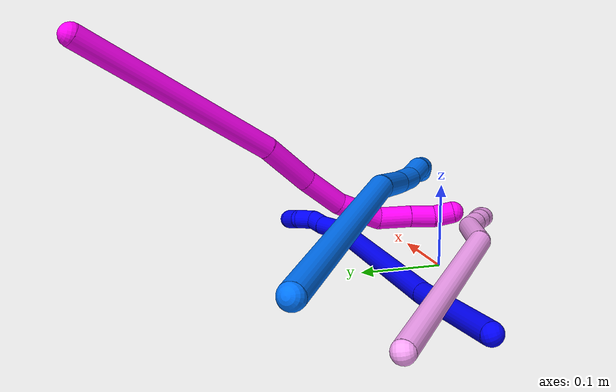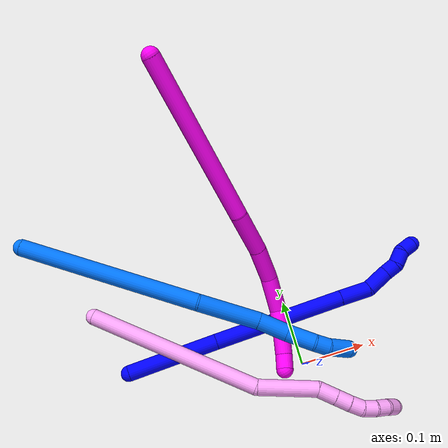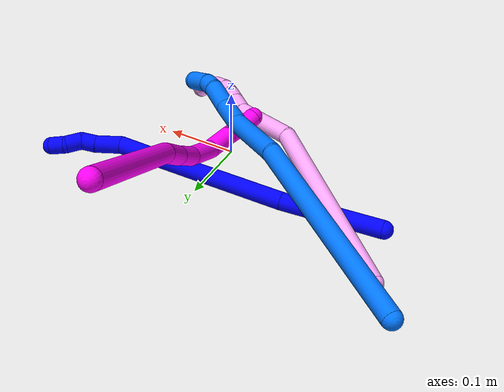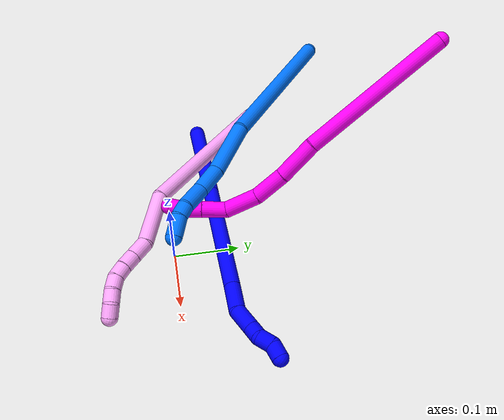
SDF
<sdf version="1.7">
 <world name="default">
  <model name="1">
   <static>0</static>
   <link name="1">
    <collision name="collision-cylinder-e_1_1_4">
     <pose>0.056631 -0.002707 -0.043408 3.07931 0.915872 3.01534</pose>
     <geometry><cylinder><radius>0.0125</radius><length>0.14281</length></cylinder></geometry>
     <surface>
      <friction><ode><mu>1.16</mu><mu2>1.16</mu2><slip1>0</slip1><slip2>0</slip2></ode></friction>
      <contact><ode><kp>1e+06</kp><kd>1</kd><max_vel>0</max_vel><min_depth>0.001</min_depth></ode></contact>
     </surface>
    </collision>
    <visual name="visual-cylinder-e_1_1_4">
     <pose>0.056631 -0.002707 -0.043408 3.07931 0.915872 3.01534</pose>
     <geometry><cylinder><radius>0.0125</radius><length>0.14281</length></cylinder></geometry>
     <material><ambient>0 0 1 1</ambient></material>
    </visual>
    <collision name="collision-cylinder-e_2_4_5">
     <pose>0.198283 -0.003655 -0.145984 -3.11187 0.962616 -3.08469</pose>
     <geometry><cylinder><radius>0.0125</radius><length>0.207195</length></cylinder></geometry>
     <surface>
      <friction><ode><mu>1.16</mu><mu2>1.16</mu2><slip1>0</slip1><slip2>0</slip2></ode></friction>
      <contact><ode><kp>1e+06</kp><kd>1</kd><max_vel>0</max_vel><min_depth>0.001</min_depth></ode></contact>
     </surface>
    </collision>
    <visual name="visual-cylinder-e_2_4_5">
     <pose>0.198283 -0.003655 -0.145984 -3.11187 0.962616 -3.08469</pose>
     <geometry><cylinder><radius>0.0125</radius><length>0.207195</length></cylinder></geometry>
     <material><ambient>0 0 1 1</ambient></material>
    </visual>
    <collision name="collision-cylinder-e_3_5_6">
     <pose>0.302526 -0.001551 -0.218111 -3.11502 0.977375 -3.09162</pose>
     <geometry><cylinder><radius>0.0125</radius><length>0.046372</length></cylinder></geometry>
     <surface>
      <friction><ode><mu>1.16</mu><mu2>1.16</mu2><slip1>0</slip1><slip2>0</slip2></ode></friction>
      <contact><ode><kp>1e+06</kp><kd>1</kd><max_vel>0</max_vel><min_depth>0.001</min_depth></ode></contact>
     </surface>
    </collision>
    <visual name="visual-cylinder-e_3_5_6">
     <pose>0.302526 -0.001551 -0.218111 -3.11502 0.977375 -3.09162</pose>
     <geometry><cylinder><radius>0.0125</radius><length>0.046372</length></cylinder></geometry>
     <material><ambient>0 0 1 1</ambient></material>
    </visual>
    <collision name="collision-cylinder-e_4_6_7">
     <pose>0.331996 0.002225 -0.24635 -2.92061 0.579496 -2.42912</pose>
     <geometry><cylinder><radius>0.0125</radius><length>0.037427</length></cylinder></geometry>
     <surface>
      <friction><ode><mu>1.16</mu><mu2>1.16</mu2><slip1>0</slip1><slip2>0</slip2></ode></friction>
      <contact><ode><kp>1e+06</kp><kd>1</kd><max_vel>0</max_vel><min_depth>0.001</min_depth></ode></contact>
     </surface>
    </collision>
    <visual name="visual-cylinder-e_4_6_7">
     <pose>0.331996 0.002225 -0.24635 -2.92061 0.579496 -2.42912</pose>
     <geometry><cylinder><radius>0.0125</radius><length>0.037427</length></cylinder></geometry>
     <material><ambient>0 0 1 1</ambient></material>
    </visual>
    <collision name="collision-cylinder-e_5_7_8">
     <pose>0.348903 0.008742 -0.268885 -2.73963 0.701337 -2.12523</pose>
     <geometry><cylinder><radius>0.0125</radius><length>0.020644</length></cylinder></geometry>
     <surface>
      <friction><ode><mu>1.16</mu><mu2>1.16</mu2><slip1>0</slip1><slip2>0</slip2></ode></friction>
      <contact><ode><kp>1e+06</kp><kd>1</kd><max_vel>0</max_vel><min_depth>0.001</min_depth></ode></contact>
     </surface>
    </collision>
    <visual name="visual-cylinder-e_5_7_8">
     <pose>0.348903 0.008742 -0.268885 -2.73963 0.701337 -2.12523</pose>
     <geometry><cylinder><radius>0.0125</radius><length>0.020644</length></cylinder></geometry>
     <material><ambient>0 0 1 1</ambient></material>
    </visual>
    <collision name="collision-cylinder-e_6_8_9">
     <pose>0.357838 0.015164 -0.287138 -2.847 0.195387 -1.1675</pose>
     <geometry><cylinder><radius>0.0125</radius><length>0.023428</length></cylinder></geometry>
     <surface>
      <friction><ode><mu>1.16</mu><mu2>1.16</mu2><slip1>0</slip1><slip2>0</slip2></ode></friction>
      <contact><ode><kp>1e+06</kp><kd>1</kd><max_vel>0</max_vel><min_depth>0.001</min_depth></ode></contact>
     </surface>
    </collision>
    <visual name="visual-cylinder-e_6_8_9">
     <pose>0.357838 0.015164 -0.287138 -2.847 0.195387 -1.1675</pose>
     <geometry><cylinder><radius>0.0125</radius><length>0.023428</length></cylinder></geometry>
     <material><ambient>0 0 1 1</ambient></material>
    </visual>
    <collision name="collision-cylinder-e_7_9_2">
     <pose>0.366199 0.017971 -0.307356 3.0842 0.582672 2.95072</pose>
     <geometry><cylinder><radius>0.0125</radius><length>0.022125</length></cylinder></geometry>
     <surface>
      <friction><ode><mu>1.16</mu><mu2>1.16</mu2><slip1>0</slip1><slip2>0</slip2></ode></friction>
      <contact><ode><kp>1e+06</kp><kd>1</kd><max_vel>0</max_vel><min_depth>0.001</min_depth></ode></contact>
     </surface>
    </collision>
    <visual name="visual-cylinder-e_7_9_2">
     <pose>0.366199 0.017971 -0.307356 3.0842 0.582672 2.95072</pose>
     <geometry><cylinder><radius>0.0125</radius><length>0.022125</length></cylinder></geometry>
     <material><ambient>0 0 1 1</ambient></material>
    </visual>
    <collision name="collision-sphere-2">
     <pose>0.372286 0.017441 -0.316578 0 -0 0</pose>
     <geometry><sphere><radius>0.0125</radius></sphere></geometry>
     <surface>
      <friction><ode><mu>1.16</mu><mu2>1.16</mu2><slip1>0</slip1><slip2>0</slip2></ode></friction>
      <contact><ode><kp>1e+06</kp><kd>1</kd><max_vel>0</max_vel><min_depth>0.001</min_depth></ode></contact>
     </surface>
    </collision>
    <visual name="visual-sphere-2">
     <pose>0.372286 0.017441 -0.316578 0 -0 0</pose>
     <geometry><sphere><radius>0.0125</radius></sphere></geometry>
     <material><ambient>0 0 1 1</ambient></material>
    </visual>
    <collision name="collision-sphere-9">
     <pose>0.360112 0.0185 -0.298134 0 -0 0</pose>
     <geometry><sphere><radius>0.0125</radius></sphere></geometry>
     <surface>
      <friction><ode><mu>1.16</mu><mu2>1.16</mu2><slip1>0</slip1><slip2>0</slip2></ode></friction>
      <contact><ode><kp>1e+06</kp><kd>1</kd><max_vel>0</max_vel><min_depth>0.001</min_depth></ode></contact>
     </surface>
    </collision>
    <visual name="visual-sphere-9">
     <pose>0.360112 0.0185 -0.298134 0 -0 0</pose>
     <geometry><sphere><radius>0.0125</radius></sphere></geometry>
     <material><ambient>0 0 1 1</ambient></material>
    </visual>
    <collision name="collision-sphere-4">
     <pose>0.113262 -0.005415 -0.086817 0 -0 0</pose>
     <geometry><sphere><radius>0.0125</radius></sphere></geometry>
     <surface>
      <friction><ode><mu>1.16</mu><mu2>1.16</mu2><slip1>0</slip1><slip2>0</slip2></ode></friction>
      <contact><ode><kp>1e+06</kp><kd>1</kd><max_vel>0</max_vel><min_depth>0.001</min_depth></ode></contact>
     </surface>
    </collision>
    <visual name="visual-sphere-4">
     <pose>0.113262 -0.005415 -0.086817 0 -0 0</pose>
     <geometry><sphere><radius>0.0125</radius></sphere></geometry>
     <material><ambient>0 0 1 1</ambient></material>
    </visual>
    <collision name="collision-sphere-1">
     <geometry><sphere><radius>0.0125</radius></sphere></geometry>
     <surface>
      <friction><ode><mu>1.16</mu><mu2>1.16</mu2><slip1>0</slip1><slip2>0</slip2></ode></friction>
      <contact><ode><kp>1e+06</kp><kd>1</kd><max_vel>0</max_vel><min_depth>0.001</min_depth></ode></contact>
     </surface>
    </collision>
    <visual name="visual-sphere-1">
     <geometry><sphere><radius>0.0125</radius></sphere></geometry>
     <material><ambient>0 0 1 1</ambient></material>
    </visual>
    <collision name="collision-sphere-8">
     <pose>0.355563 0.011828 -0.276142 0 -0 0</pose>
     <geometry><sphere><radius>0.0125</radius></sphere></geometry>
     <surface>
      <friction><ode><mu>1.16</mu><mu2>1.16</mu2><slip1>0</slip1><slip2>0</slip2></ode></friction>
      <contact><ode><kp>1e+06</kp><kd>1</kd><max_vel>0</max_vel><min_depth>0.001</min_depth></ode></contact>
     </surface>
    </collision>
    <visual name="visual-sphere-8">
     <pose>0.355563 0.011828 -0.276142 0 -0 0</pose>
     <geometry><sphere><radius>0.0125</radius></sphere></geometry>
     <material><ambient>0 0 1 1</ambient></material>
    </visual>
    <collision name="collision-sphere-5">
     <pose>0.283304 -0.001896 -0.20515 0 -0 0</pose>
     <geometry><sphere><radius>0.0125</radius></sphere></geometry>
     <surface>
      <friction><ode><mu>1.16</mu><mu2>1.16</mu2><slip1>0</slip1><slip2>0</slip2></ode></friction>
      <contact><ode><kp>1e+06</kp><kd>1</kd><max_vel>0</max_vel><min_depth>0.001</min_depth></ode></contact>
     </surface>
    </collision>
    <visual name="visual-sphere-5">
     <pose>0.283304 -0.001896 -0.20515 0 -0 0</pose>
     <geometry><sphere><radius>0.0125</radius></sphere></geometry>
     <material><ambient>0 0 1 1</ambient></material>
    </visual>
    <collision name="collision-sphere-6">
     <pose>0.321748 -0.001207 -0.231072 0 -0 0</pose>
     <geometry><sphere><radius>0.0125</radius></sphere></geometry>
     <surface>
      <friction><ode><mu>1.16</mu><mu2>1.16</mu2><slip1>0</slip1><slip2>0</slip2></ode></friction>
      <contact><ode><kp>1e+06</kp><kd>1</kd><max_vel>0</max_vel><min_depth>0.001</min_depth></ode></contact>
     </surface>
    </collision>
    <visual name="visual-sphere-6">
     <pose>0.321748 -0.001207 -0.231072 0 -0 0</pose>
     <geometry><sphere><radius>0.0125</radius></sphere></geometry>
     <material><ambient>0 0 1 1</ambient></material>
    </visual>
    <collision name="collision-sphere-7">
     <pose>0.342243 0.005657 -0.261628 0 -0 0</pose>
     <geometry><sphere><radius>0.0125</radius></sphere></geometry>
     <surface>
      <friction><ode><mu>1.16</mu><mu2>1.16</mu2><slip1>0</slip1><slip2>0</slip2></ode></friction>
      <contact><ode><kp>1e+06</kp><kd>1</kd><max_vel>0</max_vel><min_depth>0.001</min_depth></ode></contact>
     </surface>
    </collision>
    <visual name="visual-sphere-7">
     <pose>0.342243 0.005657 -0.261628 0 -0 0</pose>
     <geometry><sphere><radius>0.0125</radius></sphere></geometry>
     <material><ambient>0 0 1 1</ambient></material>
    </visual>
    <inertial>
     <pose>0.198626 -0.000399 -0.149717 0 -0 0</pose>
     <mass>0.5</mass>
     <inertia>
      <ixx>-0.00057</ixx>
      <ixy>0</ixy>
      <ixz>0</ixz>
      <iyy>0.001003</iyy>
      <iyz>0</iyz>
      <izz>-0.000856</izz>
     </inertia>
    </inertial>
   </link>
   <pose>-0.261602 0.064485 0.01968 1.15064 -0.274171 -0.519933</pose>
  </model>
  <model name="4">
   <static>0</static>
   <link name="4">
    <collision name="collision-cylinder-e_1_1_4">
     <pose>0.133847 -0.012644 -0.023597 2.64968 1.37339 2.54728</pose>
     <geometry><cylinder><radius>0.0125</radius><length>0.272997</length></cylinder></geometry>
     <surface>
      <friction><ode><mu>1.16</mu><mu2>1.16</mu2><slip1>0</slip1><slip2>0</slip2></ode></friction>
      <contact><ode><kp>1e+06</kp><kd>1</kd><max_vel>0</max_vel><min_depth>0.001</min_depth></ode></contact>
     </surface>
    </collision>
    <visual name="visual-cylinder-e_1_1_4">
     <pose>0.133847 -0.012644 -0.023597 2.64968 1.37339 2.54728</pose>
     <geometry><cylinder><radius>0.0125</radius><length>0.272997</length></cylinder></geometry>
     <material><ambient>1 0.65098 0.996078 1</ambient></material>
    </visual>
    <collision name="collision-cylinder-e_2_4_5">
     <pose>0.312839 -0.024359 -0.036661 -0.088067 1.34073 -0.069841</pose>
     <geometry><cylinder><radius>0.0125</radius><length>0.092731</length></cylinder></geometry>
     <surface>
      <friction><ode><mu>1.16</mu><mu2>1.16</mu2><slip1>0</slip1><slip2>0</slip2></ode></friction>
      <contact><ode><kp>1e+06</kp><kd>1</kd><max_vel>0</max_vel><min_depth>0.001</min_depth></ode></contact>
     </surface>
    </collision>
    <visual name="visual-cylinder-e_2_4_5">
     <pose>0.312839 -0.024359 -0.036661 -0.088067 1.34073 -0.069841</pose>
     <geometry><cylinder><radius>0.0125</radius><length>0.092731</length></cylinder></geometry>
     <material><ambient>1 0.65098 0.996078 1</ambient></material>
    </visual>
    <collision name="collision-cylinder-e_3_5_6">
     <pose>0.372435 -0.022634 -0.02848 -2.81555 1.40073 -2.75617</pose>
     <geometry><cylinder><radius>0.0125</radius><length>0.029327</length></cylinder></geometry>
     <surface>
      <friction><ode><mu>1.16</mu><mu2>1.16</mu2><slip1>0</slip1><slip2>0</slip2></ode></friction>
      <contact><ode><kp>1e+06</kp><kd>1</kd><max_vel>0</max_vel><min_depth>0.001</min_depth></ode></contact>
     </surface>
    </collision>
    <visual name="visual-cylinder-e_3_5_6">
     <pose>0.372435 -0.022634 -0.02848 -2.81555 1.40073 -2.75617</pose>
     <geometry><cylinder><radius>0.0125</radius><length>0.029327</length></cylinder></geometry>
     <material><ambient>1 0.65098 0.996078 1</ambient></material>
    </visual>
    <collision name="collision-cylinder-e_4_6_7">
     <pose>0.398092 -0.021125 -0.032637 -2.76519 1.39917 -2.69648</pose>
     <geometry><cylinder><radius>0.0125</radius><length>0.022744</length></cylinder></geometry>
     <surface>
      <friction><ode><mu>1.16</mu><mu2>1.16</mu2><slip1>0</slip1><slip2>0</slip2></ode></friction>
      <contact><ode><kp>1e+06</kp><kd>1</kd><max_vel>0</max_vel><min_depth>0.001</min_depth></ode></contact>
     </surface>
    </collision>
    <visual name="visual-cylinder-e_4_6_7">
     <pose>0.398092 -0.021125 -0.032637 -2.76519 1.39917 -2.69648</pose>
     <geometry><cylinder><radius>0.0125</radius><length>0.022744</length></cylinder></geometry>
     <material><ambient>1 0.65098 0.996078 1</ambient></material>
    </visual>
    <collision name="collision-cylinder-e_5_7_8">
     <pose>0.4196 -0.01917 -0.035333 -2.19232 1.42368 -2.06729</pose>
     <geometry><cylinder><radius>0.0125</radius><length>0.020831</length></cylinder></geometry>
     <surface>
      <friction><ode><mu>1.16</mu><mu2>1.16</mu2><slip1>0</slip1><slip2>0</slip2></ode></friction>
      <contact><ode><kp>1e+06</kp><kd>1</kd><max_vel>0</max_vel><min_depth>0.001</min_depth></ode></contact>
     </surface>
    </collision>
    <visual name="visual-cylinder-e_5_7_8">
     <pose>0.4196 -0.01917 -0.035333 -2.19232 1.42368 -2.06729</pose>
     <geometry><cylinder><radius>0.0125</radius><length>0.020831</length></cylinder></geometry>
     <material><ambient>1 0.65098 0.996078 1</ambient></material>
    </visual>
    <collision name="collision-cylinder-e_6_8_9">
     <pose>0.43975 -0.016395 -0.033561 -0.523027 1.26851 -0.388812</pose>
     <geometry><cylinder><radius>0.0125</radius><length>0.02063</length></cylinder></geometry>
     <surface>
      <friction><ode><mu>1.16</mu><mu2>1.16</mu2><slip1>0</slip1><slip2>0</slip2></ode></friction>
      <contact><ode><kp>1e+06</kp><kd>1</kd><max_vel>0</max_vel><min_depth>0.001</min_depth></ode></contact>
     </surface>
    </collision>
    <visual name="visual-cylinder-e_6_8_9">
     <pose>0.43975 -0.016395 -0.033561 -0.523027 1.26851 -0.388812</pose>
     <geometry><cylinder><radius>0.0125</radius><length>0.02063</length></cylinder></geometry>
     <material><ambient>1 0.65098 0.996078 1</ambient></material>
    </visual>
    <collision name="collision-cylinder-e_7_9_10">
     <pose>0.458309 -0.011596 -0.027137 -0.714632 1.05121 -0.426512</pose>
     <geometry><cylinder><radius>0.0125</radius><length>0.020071</length></cylinder></geometry>
     <surface>
      <friction><ode><mu>1.16</mu><mu2>1.16</mu2><slip1>0</slip1><slip2>0</slip2></ode></friction>
      <contact><ode><kp>1e+06</kp><kd>1</kd><max_vel>0</max_vel><min_depth>0.001</min_depth></ode></contact>
     </surface>
    </collision>
    <visual name="visual-cylinder-e_7_9_10">
     <pose>0.458309 -0.011596 -0.027137 -0.714632 1.05121 -0.426512</pose>
     <geometry><cylinder><radius>0.0125</radius><length>0.020071</length></cylinder></geometry>
     <material><ambient>1 0.65098 0.996078 1</ambient></material>
    </visual>
    <collision name="collision-cylinder-e_8_10_2">
     <pose>0.474439 -0.001859 -0.020233 -1.1189 0.800903 -0.518238</pose>
     <geometry><cylinder><radius>0.0125</radius><length>0.020669</length></cylinder></geometry>
     <surface>
      <friction><ode><mu>1.16</mu><mu2>1.16</mu2><slip1>0</slip1><slip2>0</slip2></ode></friction>
      <contact><ode><kp>1e+06</kp><kd>1</kd><max_vel>0</max_vel><min_depth>0.001</min_depth></ode></contact>
     </surface>
    </collision>
    <visual name="visual-cylinder-e_8_10_2">
     <pose>0.474439 -0.001859 -0.020233 -1.1189 0.800903 -0.518238</pose>
     <geometry><cylinder><radius>0.0125</radius><length>0.020669</length></cylinder></geometry>
     <material><ambient>1 0.65098 0.996078 1</ambient></material>
    </visual>
    <collision name="collision-sphere-2">
     <pose>0.481859 0.004612 -0.017091 0 -0 0</pose>
     <geometry><sphere><radius>0.0125</radius></sphere></geometry>
     <surface>
      <friction><ode><mu>1.16</mu><mu2>1.16</mu2><slip1>0</slip1><slip2>0</slip2></ode></friction>
      <contact><ode><kp>1e+06</kp><kd>1</kd><max_vel>0</max_vel><min_depth>0.001</min_depth></ode></contact>
     </surface>
    </collision>
    <visual name="visual-sphere-2">
     <pose>0.481859 0.004612 -0.017091 0 -0 0</pose>
     <geometry><sphere><radius>0.0125</radius></sphere></geometry>
     <material><ambient>1 0.65098 0.996078 1</ambient></material>
    </visual>
    <collision name="collision-sphere-10">
     <pose>0.467019 -0.00833 -0.023374 0 -0 0</pose>
     <geometry><sphere><radius>0.0125</radius></sphere></geometry>
     <surface>
      <friction><ode><mu>1.16</mu><mu2>1.16</mu2><slip1>0</slip1><slip2>0</slip2></ode></friction>
      <contact><ode><kp>1e+06</kp><kd>1</kd><max_vel>0</max_vel><min_depth>0.001</min_depth></ode></contact>
     </surface>
    </collision>
    <visual name="visual-sphere-10">
     <pose>0.467019 -0.00833 -0.023374 0 -0 0</pose>
     <geometry><sphere><radius>0.0125</radius></sphere></geometry>
     <material><ambient>1 0.65098 0.996078 1</ambient></material>
    </visual>
    <collision name="collision-sphere-9">
     <pose>0.449598 -0.014861 -0.030901 0 -0 0</pose>
     <geometry><sphere><radius>0.0125</radius></sphere></geometry>
     <surface>
      <friction><ode><mu>1.16</mu><mu2>1.16</mu2><slip1>0</slip1><slip2>0</slip2></ode></friction>
      <contact><ode><kp>1e+06</kp><kd>1</kd><max_vel>0</max_vel><min_depth>0.001</min_depth></ode></contact>
     </surface>
    </collision>
    <visual name="visual-sphere-9">
     <pose>0.449598 -0.014861 -0.030901 0 -0 0</pose>
     <geometry><sphere><radius>0.0125</radius></sphere></geometry>
     <material><ambient>1 0.65098 0.996078 1</ambient></material>
    </visual>
    <collision name="collision-sphere-4">
     <pose>0.267694 -0.025289 -0.047194 0 -0 0</pose>
     <geometry><sphere><radius>0.0125</radius></sphere></geometry>
     <surface>
      <friction><ode><mu>1.16</mu><mu2>1.16</mu2><slip1>0</slip1><slip2>0</slip2></ode></friction>
      <contact><ode><kp>1e+06</kp><kd>1</kd><max_vel>0</max_vel><min_depth>0.001</min_depth></ode></contact>
     </surface>
    </collision>
    <visual name="visual-sphere-4">
     <pose>0.267694 -0.025289 -0.047194 0 -0 0</pose>
     <geometry><sphere><radius>0.0125</radius></sphere></geometry>
     <material><ambient>1 0.65098 0.996078 1</ambient></material>
    </visual>
    <collision name="collision-sphere-1">
     <geometry><sphere><radius>0.0125</radius></sphere></geometry>
     <surface>
      <friction><ode><mu>1.16</mu><mu2>1.16</mu2><slip1>0</slip1><slip2>0</slip2></ode></friction>
      <contact><ode><kp>1e+06</kp><kd>1</kd><max_vel>0</max_vel><min_depth>0.001</min_depth></ode></contact>
     </surface>
    </collision>
    <visual name="visual-sphere-1">
     <geometry><sphere><radius>0.0125</radius></sphere></geometry>
     <material><ambient>1 0.65098 0.996078 1</ambient></material>
    </visual>
    <collision name="collision-sphere-8">
     <pose>0.429903 -0.017929 -0.036222 0 -0 0</pose>
     <geometry><sphere><radius>0.0125</radius></sphere></geometry>
     <surface>
      <friction><ode><mu>1.16</mu><mu2>1.16</mu2><slip1>0</slip1><slip2>0</slip2></ode></friction>
      <contact><ode><kp>1e+06</kp><kd>1</kd><max_vel>0</max_vel><min_depth>0.001</min_depth></ode></contact>
     </surface>
    </collision>
    <visual name="visual-sphere-8">
     <pose>0.429903 -0.017929 -0.036222 0 -0 0</pose>
     <geometry><sphere><radius>0.0125</radius></sphere></geometry>
     <material><ambient>1 0.65098 0.996078 1</ambient></material>
    </visual>
    <collision name="collision-sphere-5">
     <pose>0.357983 -0.023429 -0.026129 0 -0 0</pose>
     <geometry><sphere><radius>0.0125</radius></sphere></geometry>
     <surface>
      <friction><ode><mu>1.16</mu><mu2>1.16</mu2><slip1>0</slip1><slip2>0</slip2></ode></friction>
      <contact><ode><kp>1e+06</kp><kd>1</kd><max_vel>0</max_vel><min_depth>0.001</min_depth></ode></contact>
     </surface>
    </collision>
    <visual name="visual-sphere-5">
     <pose>0.357983 -0.023429 -0.026129 0 -0 0</pose>
     <geometry><sphere><radius>0.0125</radius></sphere></geometry>
     <material><ambient>1 0.65098 0.996078 1</ambient></material>
    </visual>
    <collision name="collision-sphere-6">
     <pose>0.386887 -0.021839 -0.030831 0 -0 0</pose>
     <geometry><sphere><radius>0.0125</radius></sphere></geometry>
     <surface>
      <friction><ode><mu>1.16</mu><mu2>1.16</mu2><slip1>0</slip1><slip2>0</slip2></ode></friction>
      <contact><ode><kp>1e+06</kp><kd>1</kd><max_vel>0</max_vel><min_depth>0.001</min_depth></ode></contact>
     </surface>
    </collision>
    <visual name="visual-sphere-6">
     <pose>0.386887 -0.021839 -0.030831 0 -0 0</pose>
     <geometry><sphere><radius>0.0125</radius></sphere></geometry>
     <material><ambient>1 0.65098 0.996078 1</ambient></material>
    </visual>
    <collision name="collision-sphere-7">
     <pose>0.409297 -0.020411 -0.034443 0 -0 0</pose>
     <geometry><sphere><radius>0.0125</radius></sphere></geometry>
     <surface>
      <friction><ode><mu>1.16</mu><mu2>1.16</mu2><slip1>0</slip1><slip2>0</slip2></ode></friction>
      <contact><ode><kp>1e+06</kp><kd>1</kd><max_vel>0</max_vel><min_depth>0.001</min_depth></ode></contact>
     </surface>
    </collision>
    <visual name="visual-sphere-7">
     <pose>0.409297 -0.020411 -0.034443 0 -0 0</pose>
     <geometry><sphere><radius>0.0125</radius></sphere></geometry>
     <material><ambient>1 0.65098 0.996078 1</ambient></material>
    </visual>
    <inertial>
     <pose>0.244688 -0.015727 -0.027621 0 -0 0</pose>
     <mass>0.5</mass>
     <inertia>
      <ixx>-3.8e-05</ixx>
      <ixy>0</ixy>
      <ixz>0</ixz>
      <iyy>0.001954</iyy>
      <iyz>0</iyz>
      <izz>-0.001599</izz>
     </inertia>
    </inertial>
   </link>
   <pose>-0.289214 0.163497 0.025382 -1.77547 0.026495 -0.550267</pose>
  </model>
  <model name="10">
   <static>0</static>
   <link name="10">
    <collision name="collision-cylinder-e_1_1_4">
     <pose>-0.021285 -0.021105 -0.117762 2.96426 -0.176065 -1.56357</pose>
     <geometry><cylinder><radius>0.0125</radius><length>0.243033</length></cylinder></geometry>
     <surface>
      <friction><ode><mu>1.16</mu><mu2>1.16</mu2><slip1>0</slip1><slip2>0</slip2></ode></friction>
      <contact><ode><kp>1e+06</kp><kd>1</kd><max_vel>0</max_vel><min_depth>0.001</min_depth></ode></contact>
     </surface>
    </collision>
    <visual name="visual-cylinder-e_1_1_4">
     <pose>-0.021285 -0.021105 -0.117762 2.96426 -0.176065 -1.56357</pose>
     <geometry><cylinder><radius>0.0125</radius><length>0.243033</length></cylinder></geometry>
     <material><ambient>1 0 0.964706 1</ambient></material>
    </visual>
    <collision name="collision-cylinder-e_2_4_5">
     <pose>-0.052128 -0.050092 -0.265314 2.88294 -0.300773 -1.72305</pose>
     <geometry><cylinder><radius>0.0125</radius><length>0.064528</length></cylinder></geometry>
     <surface>
      <friction><ode><mu>1.16</mu><mu2>1.16</mu2><slip1>0</slip1><slip2>0</slip2></ode></friction>
      <contact><ode><kp>1e+06</kp><kd>1</kd><max_vel>0</max_vel><min_depth>0.001</min_depth></ode></contact>
     </surface>
    </collision>
    <visual name="visual-cylinder-e_2_4_5">
     <pose>-0.052128 -0.050092 -0.265314 2.88294 -0.300773 -1.72305</pose>
     <geometry><cylinder><radius>0.0125</radius><length>0.064528</length></cylinder></geometry>
     <material><ambient>1 0 0.964706 1</ambient></material>
    </visual>
    <collision name="collision-cylinder-e_3_5_6">
     <pose>-0.066614 -0.06581 -0.318907 2.82355 -0.194168 -1.09147</pose>
     <geometry><cylinder><radius>0.0125</radius><length>0.051077</length></cylinder></geometry>
     <surface>
      <friction><ode><mu>1.16</mu><mu2>1.16</mu2><slip1>0</slip1><slip2>0</slip2></ode></friction>
      <contact><ode><kp>1e+06</kp><kd>1</kd><max_vel>0</max_vel><min_depth>0.001</min_depth></ode></contact>
     </surface>
    </collision>
    <visual name="visual-cylinder-e_3_5_6">
     <pose>-0.066614 -0.06581 -0.318907 2.82355 -0.194168 -1.09147</pose>
     <geometry><cylinder><radius>0.0125</radius><length>0.051077</length></cylinder></geometry>
     <material><ambient>1 0 0.964706 1</ambient></material>
    </visual>
    <collision name="collision-cylinder-e_4_6_7">
     <pose>-0.069571 -0.080979 -0.368094 2.8604 0.074428 0.514474</pose>
     <geometry><cylinder><radius>0.0125</radius><length>0.052992</length></cylinder></geometry>
     <surface>
      <friction><ode><mu>1.16</mu><mu2>1.16</mu2><slip1>0</slip1><slip2>0</slip2></ode></friction>
      <contact><ode><kp>1e+06</kp><kd>1</kd><max_vel>0</max_vel><min_depth>0.001</min_depth></ode></contact>
     </surface>
    </collision>
    <visual name="visual-cylinder-e_4_6_7">
     <pose>-0.069571 -0.080979 -0.368094 2.8604 0.074428 0.514474</pose>
     <geometry><cylinder><radius>0.0125</radius><length>0.052992</length></cylinder></geometry>
     <material><ambient>1 0 0.964706 1</ambient></material>
    </visual>
    <collision name="collision-cylinder-e_5_7_8">
     <pose>-0.057989 -0.091214 -0.409238 2.95938 0.540302 2.50427</pose>
     <geometry><cylinder><radius>0.0125</radius><length>0.037372</length></cylinder></geometry>
     <surface>
      <friction><ode><mu>1.16</mu><mu2>1.16</mu2><slip1>0</slip1><slip2>0</slip2></ode></friction>
      <contact><ode><kp>1e+06</kp><kd>1</kd><max_vel>0</max_vel><min_depth>0.001</min_depth></ode></contact>
     </surface>
    </collision>
    <visual name="visual-cylinder-e_5_7_8">
     <pose>-0.057989 -0.091214 -0.409238 2.95938 0.540302 2.50427</pose>
     <geometry><cylinder><radius>0.0125</radius><length>0.037372</length></cylinder></geometry>
     <material><ambient>1 0 0.964706 1</ambient></material>
    </visual>
    <collision name="collision-cylinder-e_6_8_9">
     <pose>-0.041561 -0.097075 -0.437066 2.90135 0.501708 2.26118</pose>
     <geometry><cylinder><radius>0.0125</radius><length>0.028346</length></cylinder></geometry>
     <surface>
      <friction><ode><mu>1.16</mu><mu2>1.16</mu2><slip1>0</slip1><slip2>0</slip2></ode></friction>
      <contact><ode><kp>1e+06</kp><kd>1</kd><max_vel>0</max_vel><min_depth>0.001</min_depth></ode></contact>
     </surface>
    </collision>
    <visual name="visual-cylinder-e_6_8_9">
     <pose>-0.041561 -0.097075 -0.437066 2.90135 0.501708 2.26118</pose>
     <geometry><cylinder><radius>0.0125</radius><length>0.028346</length></cylinder></geometry>
     <material><ambient>1 0 0.964706 1</ambient></material>
    </visual>
    <collision name="collision-cylinder-e_7_9_2">
     <pose>-0.027034 -0.101217 -0.457346 2.99816 0.748835 2.77994</pose>
     <geometry><cylinder><radius>0.0125</radius><length>0.022652</length></cylinder></geometry>
     <surface>
      <friction><ode><mu>1.16</mu><mu2>1.16</mu2><slip1>0</slip1><slip2>0</slip2></ode></friction>
      <contact><ode><kp>1e+06</kp><kd>1</kd><max_vel>0</max_vel><min_depth>0.001</min_depth></ode></contact>
     </surface>
    </collision>
    <visual name="visual-cylinder-e_7_9_2">
     <pose>-0.027034 -0.101217 -0.457346 2.99816 0.748835 2.77994</pose>
     <geometry><cylinder><radius>0.0125</radius><length>0.022652</length></cylinder></geometry>
     <material><ambient>1 0 0.964706 1</ambient></material>
    </visual>
    <collision name="collision-sphere-2">
     <pose>-0.019324 -0.102403 -0.465557 0 -0 0</pose>
     <geometry><sphere><radius>0.0125</radius></sphere></geometry>
     <surface>
      <friction><ode><mu>1.16</mu><mu2>1.16</mu2><slip1>0</slip1><slip2>0</slip2></ode></friction>
      <contact><ode><kp>1e+06</kp><kd>1</kd><max_vel>0</max_vel><min_depth>0.001</min_depth></ode></contact>
     </surface>
    </collision>
    <visual name="visual-sphere-2">
     <pose>-0.019324 -0.102403 -0.465557 0 -0 0</pose>
     <geometry><sphere><radius>0.0125</radius></sphere></geometry>
     <material><ambient>1 0 0.964706 1</ambient></material>
    </visual>
    <collision name="collision-sphere-9">
     <pose>-0.034745 -0.100031 -0.449135 0 -0 0</pose>
     <geometry><sphere><radius>0.0125</radius></sphere></geometry>
     <surface>
      <friction><ode><mu>1.16</mu><mu2>1.16</mu2><slip1>0</slip1><slip2>0</slip2></ode></friction>
      <contact><ode><kp>1e+06</kp><kd>1</kd><max_vel>0</max_vel><min_depth>0.001</min_depth></ode></contact>
     </surface>
    </collision>
    <visual name="visual-sphere-9">
     <pose>-0.034745 -0.100031 -0.449135 0 -0 0</pose>
     <geometry><sphere><radius>0.0125</radius></sphere></geometry>
     <material><ambient>1 0 0.964706 1</ambient></material>
    </visual>
    <collision name="collision-sphere-4">
     <pose>-0.042569 -0.04221 -0.235524 0 -0 0</pose>
     <geometry><sphere><radius>0.0125</radius></sphere></geometry>
     <surface>
      <friction><ode><mu>1.16</mu><mu2>1.16</mu2><slip1>0</slip1><slip2>0</slip2></ode></friction>
      <contact><ode><kp>1e+06</kp><kd>1</kd><max_vel>0</max_vel><min_depth>0.001</min_depth></ode></contact>
     </surface>
    </collision>
    <visual name="visual-sphere-4">
     <pose>-0.042569 -0.04221 -0.235524 0 -0 0</pose>
     <geometry><sphere><radius>0.0125</radius></sphere></geometry>
     <material><ambient>1 0 0.964706 1</ambient></material>
    </visual>
    <collision name="collision-sphere-1">
     <geometry><sphere><radius>0.0125</radius></sphere></geometry>
     <surface>
      <friction><ode><mu>1.16</mu><mu2>1.16</mu2><slip1>0</slip1><slip2>0</slip2></ode></friction>
      <contact><ode><kp>1e+06</kp><kd>1</kd><max_vel>0</max_vel><min_depth>0.001</min_depth></ode></contact>
     </surface>
    </collision>
    <visual name="visual-sphere-1">
     <geometry><sphere><radius>0.0125</radius></sphere></geometry>
     <material><ambient>1 0 0.964706 1</ambient></material>
    </visual>
    <collision name="collision-sphere-8">
     <pose>-0.048377 -0.094118 -0.424997 0 -0 0</pose>
     <geometry><sphere><radius>0.0125</radius></sphere></geometry>
     <surface>
      <friction><ode><mu>1.16</mu><mu2>1.16</mu2><slip1>0</slip1><slip2>0</slip2></ode></friction>
      <contact><ode><kp>1e+06</kp><kd>1</kd><max_vel>0</max_vel><min_depth>0.001</min_depth></ode></contact>
     </surface>
    </collision>
    <visual name="visual-sphere-8">
     <pose>-0.048377 -0.094118 -0.424997 0 -0 0</pose>
     <geometry><sphere><radius>0.0125</radius></sphere></geometry>
     <material><ambient>1 0 0.964706 1</ambient></material>
    </visual>
    <collision name="collision-sphere-5">
     <pose>-0.061686 -0.057974 -0.295105 0 -0 0</pose>
     <geometry><sphere><radius>0.0125</radius></sphere></geometry>
     <surface>
      <friction><ode><mu>1.16</mu><mu2>1.16</mu2><slip1>0</slip1><slip2>0</slip2></ode></friction>
      <contact><ode><kp>1e+06</kp><kd>1</kd><max_vel>0</max_vel><min_depth>0.001</min_depth></ode></contact>
     </surface>
    </collision>
    <visual name="visual-sphere-5">
     <pose>-0.061686 -0.057974 -0.295105 0 -0 0</pose>
     <geometry><sphere><radius>0.0125</radius></sphere></geometry>
     <material><ambient>1 0 0.964706 1</ambient></material>
    </visual>
    <collision name="collision-sphere-6">
     <pose>-0.071541 -0.073646 -0.342709 0 -0 0</pose>
     <geometry><sphere><radius>0.0125</radius></sphere></geometry>
     <surface>
      <friction><ode><mu>1.16</mu><mu2>1.16</mu2><slip1>0</slip1><slip2>0</slip2></ode></friction>
      <contact><ode><kp>1e+06</kp><kd>1</kd><max_vel>0</max_vel><min_depth>0.001</min_depth></ode></contact>
     </surface>
    </collision>
    <visual name="visual-sphere-6">
     <pose>-0.071541 -0.073646 -0.342709 0 -0 0</pose>
     <geometry><sphere><radius>0.0125</radius></sphere></geometry>
     <material><ambient>1 0 0.964706 1</ambient></material>
    </visual>
    <collision name="collision-sphere-7">
     <pose>-0.067601 -0.088311 -0.393479 0 -0 0</pose>
     <geometry><sphere><radius>0.0125</radius></sphere></geometry>
     <surface>
      <friction><ode><mu>1.16</mu><mu2>1.16</mu2><slip1>0</slip1><slip2>0</slip2></ode></friction>
      <contact><ode><kp>1e+06</kp><kd>1</kd><max_vel>0</max_vel><min_depth>0.001</min_depth></ode></contact>
     </surface>
    </collision>
    <visual name="visual-sphere-7">
     <pose>-0.067601 -0.088311 -0.393479 0 -0 0</pose>
     <geometry><sphere><radius>0.0125</radius></sphere></geometry>
     <material><ambient>1 0 0.964706 1</ambient></material>
    </visual>
    <inertial>
     <pose>-0.039167 -0.048935 -0.239156 0 -0 0</pose>
     <mass>0.5</mass>
     <inertia>
      <ixx>-0.001194</ixx>
      <ixy>0</ixy>
      <ixz>0</ixz>
      <iyy>-0.001191</iyy>
      <iyz>0</iyz>
      <izz>0.000403</izz>
     </inertia>
    </inertial>
   </link>
   <pose>-0.094259 0.422161 0.291446 1.1185 -0.821249 -2.50551</pose>
  </model>
  <model name="14">
   <static>0</static>
   <link name="14">
    <collision name="collision-cylinder-e_1_1_4">
     <pose>0.039958 -0.038458 -0.12423 2.84138 0.298107 1.56363</pose>
     <geometry><cylinder><radius>0.0125</radius><length>0.272094</length></cylinder></geometry>
     <surface>
      <friction><ode><mu>1.16</mu><mu2>1.16</mu2><slip1>0</slip1><slip2>0</slip2></ode></friction>
      <contact><ode><kp>1e+06</kp><kd>1</kd><max_vel>0</max_vel><min_depth>0.001</min_depth></ode></contact>
     </surface>
    </collision>
    <visual name="visual-cylinder-e_1_1_4">
     <pose>0.039958 -0.038458 -0.12423 2.84138 0.298107 1.56363</pose>
     <geometry><cylinder><radius>0.0125</radius><length>0.272094</length></cylinder></geometry>
     <material><ambient>0 0.462745 1 1</ambient></material>
    </visual>
    <collision name="collision-cylinder-e_2_4_5">
     <pose>0.087519 -0.079864 -0.292525 3.0748 0.170469 2.39616</pose>
     <geometry><cylinder><radius>0.0125</radius><length>0.089627</length></cylinder></geometry>
     <surface>
      <friction><ode><mu>1.16</mu><mu2>1.16</mu2><slip1>0</slip1><slip2>0</slip2></ode></friction>
      <contact><ode><kp>1e+06</kp><kd>1</kd><max_vel>0</max_vel><min_depth>0.001</min_depth></ode></contact>
     </surface>
    </collision>
    <visual name="visual-cylinder-e_2_4_5">
     <pose>0.087519 -0.079864 -0.292525 3.0748 0.170469 2.39616</pose>
     <geometry><cylinder><radius>0.0125</radius><length>0.089627</length></cylinder></geometry>
     <material><ambient>0 0.462745 1 1</ambient></material>
    </visual>
    <collision name="collision-cylinder-e_3_5_6">
     <pose>0.098061 -0.087323 -0.357895 2.93292 0.13415 1.14075</pose>
     <geometry><cylinder><radius>0.0125</radius><length>0.043949</length></cylinder></geometry>
     <surface>
      <friction><ode><mu>1.16</mu><mu2>1.16</mu2><slip1>0</slip1><slip2>0</slip2></ode></friction>
      <contact><ode><kp>1e+06</kp><kd>1</kd><max_vel>0</max_vel><min_depth>0.001</min_depth></ode></contact>
     </surface>
    </collision>
    <visual name="visual-cylinder-e_3_5_6">
     <pose>0.098061 -0.087323 -0.357895 2.93292 0.13415 1.14075</pose>
     <geometry><cylinder><radius>0.0125</radius><length>0.043949</length></cylinder></geometry>
     <material><ambient>0 0.462745 1 1</ambient></material>
    </visual>
    <collision name="collision-cylinder-e_4_6_7">
     <pose>0.106311 -0.098127 -0.398154 2.82107 0.259905 1.35978</pose>
     <geometry><cylinder><radius>0.0125</radius><length>0.041331</length></cylinder></geometry>
     <surface>
      <friction><ode><mu>1.16</mu><mu2>1.16</mu2><slip1>0</slip1><slip2>0</slip2></ode></friction>
      <contact><ode><kp>1e+06</kp><kd>1</kd><max_vel>0</max_vel><min_depth>0.001</min_depth></ode></contact>
     </surface>
    </collision>
    <visual name="visual-cylinder-e_4_6_7">
     <pose>0.106311 -0.098127 -0.398154 2.82107 0.259905 1.35978</pose>
     <geometry><cylinder><radius>0.0125</radius><length>0.041331</length></cylinder></geometry>
     <material><ambient>0 0.462745 1 1</ambient></material>
    </visual>
    <collision name="collision-cylinder-e_5_7_8">
     <pose>0.113277 -0.105188 -0.427098 3.06477 0.163791 2.26582</pose>
     <geometry><cylinder><radius>0.0125</radius><length>0.020309</length></cylinder></geometry>
     <surface>
      <friction><ode><mu>1.16</mu><mu2>1.16</mu2><slip1>0</slip1><slip2>0</slip2></ode></friction>
      <contact><ode><kp>1e+06</kp><kd>1</kd><max_vel>0</max_vel><min_depth>0.001</min_depth></ode></contact>
     </surface>
    </collision>
    <visual name="visual-cylinder-e_5_7_8">
     <pose>0.113277 -0.105188 -0.427098 3.06477 0.163791 2.26582</pose>
     <geometry><cylinder><radius>0.0125</radius><length>0.020309</length></cylinder></geometry>
     <material><ambient>0 0.462745 1 1</ambient></material>
    </visual>
    <collision name="collision-cylinder-e_6_8_2">
     <pose>0.11791 -0.102464 -0.452774 -2.92253 0.183153 -1.3915</pose>
     <geometry><cylinder><radius>0.0125</radius><length>0.03269</length></cylinder></geometry>
     <surface>
      <friction><ode><mu>1.16</mu><mu2>1.16</mu2><slip1>0</slip1><slip2>0</slip2></ode></friction>
      <contact><ode><kp>1e+06</kp><kd>1</kd><max_vel>0</max_vel><min_depth>0.001</min_depth></ode></contact>
     </surface>
    </collision>
    <visual name="visual-cylinder-e_6_8_2">
     <pose>0.11791 -0.102464 -0.452774 -2.92253 0.183153 -1.3915</pose>
     <geometry><cylinder><radius>0.0125</radius><length>0.03269</length></cylinder></geometry>
     <material><ambient>0 0.462745 1 1</ambient></material>
    </visual>
    <collision name="collision-sphere-2">
     <pose>0.120887 -0.098972 -0.468462 0 -0 0</pose>
     <geometry><sphere><radius>0.0125</radius></sphere></geometry>
     <surface>
      <friction><ode><mu>1.16</mu><mu2>1.16</mu2><slip1>0</slip1><slip2>0</slip2></ode></friction>
      <contact><ode><kp>1e+06</kp><kd>1</kd><max_vel>0</max_vel><min_depth>0.001</min_depth></ode></contact>
     </surface>
    </collision>
    <visual name="visual-sphere-2">
     <pose>0.120887 -0.098972 -0.468462 0 -0 0</pose>
     <geometry><sphere><radius>0.0125</radius></sphere></geometry>
     <material><ambient>0 0.462745 1 1</ambient></material>
    </visual>
    <collision name="collision-sphere-4">
     <pose>0.079917 -0.076917 -0.24846 0 -0 0</pose>
     <geometry><sphere><radius>0.0125</radius></sphere></geometry>
     <surface>
      <friction><ode><mu>1.16</mu><mu2>1.16</mu2><slip1>0</slip1><slip2>0</slip2></ode></friction>
      <contact><ode><kp>1e+06</kp><kd>1</kd><max_vel>0</max_vel><min_depth>0.001</min_depth></ode></contact>
     </surface>
    </collision>
    <visual name="visual-sphere-4">
     <pose>0.079917 -0.076917 -0.24846 0 -0 0</pose>
     <geometry><sphere><radius>0.0125</radius></sphere></geometry>
     <material><ambient>0 0.462745 1 1</ambient></material>
    </visual>
    <collision name="collision-sphere-1">
     <geometry><sphere><radius>0.0125</radius></sphere></geometry>
     <surface>
      <friction><ode><mu>1.16</mu><mu2>1.16</mu2><slip1>0</slip1><slip2>0</slip2></ode></friction>
      <contact><ode><kp>1e+06</kp><kd>1</kd><max_vel>0</max_vel><min_depth>0.001</min_depth></ode></contact>
     </surface>
    </collision>
    <visual name="visual-sphere-1">
     <geometry><sphere><radius>0.0125</radius></sphere></geometry>
     <material><ambient>0 0.462745 1 1</ambient></material>
    </visual>
    <collision name="collision-sphere-8">
     <pose>0.114933 -0.105957 -0.437086 0 -0 0</pose>
     <geometry><sphere><radius>0.0125</radius></sphere></geometry>
     <surface>
      <friction><ode><mu>1.16</mu><mu2>1.16</mu2><slip1>0</slip1><slip2>0</slip2></ode></friction>
      <contact><ode><kp>1e+06</kp><kd>1</kd><max_vel>0</max_vel><min_depth>0.001</min_depth></ode></contact>
     </surface>
    </collision>
    <visual name="visual-sphere-8">
     <pose>0.114933 -0.105957 -0.437086 0 -0 0</pose>
     <geometry><sphere><radius>0.0125</radius></sphere></geometry>
     <material><ambient>0 0.462745 1 1</ambient></material>
    </visual>
    <collision name="collision-sphere-5">
     <pose>0.095122 -0.082812 -0.33659 0 -0 0</pose>
     <geometry><sphere><radius>0.0125</radius></sphere></geometry>
     <surface>
      <friction><ode><mu>1.16</mu><mu2>1.16</mu2><slip1>0</slip1><slip2>0</slip2></ode></friction>
      <contact><ode><kp>1e+06</kp><kd>1</kd><max_vel>0</max_vel><min_depth>0.001</min_depth></ode></contact>
     </surface>
    </collision>
    <visual name="visual-sphere-5">
     <pose>0.095122 -0.082812 -0.33659 0 -0 0</pose>
     <geometry><sphere><radius>0.0125</radius></sphere></geometry>
     <material><ambient>0 0.462745 1 1</ambient></material>
    </visual>
    <collision name="collision-sphere-6">
     <pose>0.101 -0.091835 -0.3792 0 -0 0</pose>
     <geometry><sphere><radius>0.0125</radius></sphere></geometry>
     <surface>
      <friction><ode><mu>1.16</mu><mu2>1.16</mu2><slip1>0</slip1><slip2>0</slip2></ode></friction>
      <contact><ode><kp>1e+06</kp><kd>1</kd><max_vel>0</max_vel><min_depth>0.001</min_depth></ode></contact>
     </surface>
    </collision>
    <visual name="visual-sphere-6">
     <pose>0.101 -0.091835 -0.3792 0 -0 0</pose>
     <geometry><sphere><radius>0.0125</radius></sphere></geometry>
     <material><ambient>0 0.462745 1 1</ambient></material>
    </visual>
    <collision name="collision-sphere-7">
     <pose>0.111621 -0.104419 -0.417109 0 -0 0</pose>
     <geometry><sphere><radius>0.0125</radius></sphere></geometry>
     <surface>
      <friction><ode><mu>1.16</mu><mu2>1.16</mu2><slip1>0</slip1><slip2>0</slip2></ode></friction>
      <contact><ode><kp>1e+06</kp><kd>1</kd><max_vel>0</max_vel><min_depth>0.001</min_depth></ode></contact>
     </surface>
    </collision>
    <visual name="visual-sphere-7">
     <pose>0.111621 -0.104419 -0.417109 0 -0 0</pose>
     <geometry><sphere><radius>0.0125</radius></sphere></geometry>
     <material><ambient>0 0.462745 1 1</ambient></material>
    </visual>
    <inertial>
     <pose>0.06715 -0.062003 -0.231361 0 -0 0</pose>
     <mass>0.5</mass>
     <inertia>
      <ixx>0.001649</ixx>
      <ixy>0</ixy>
      <ixz>0</ixz>
      <iyy>0.00184</iyy>
      <iyz>0</iyz>
      <izz>-6.3e-05</izz>
     </inertia>
    </inertial>
   </link>
   <pose>-0.350155 0.280328 0.109191 -1.17881 -0.600792 0.665229</pose>
  </model>
 </world>
</sdf>
